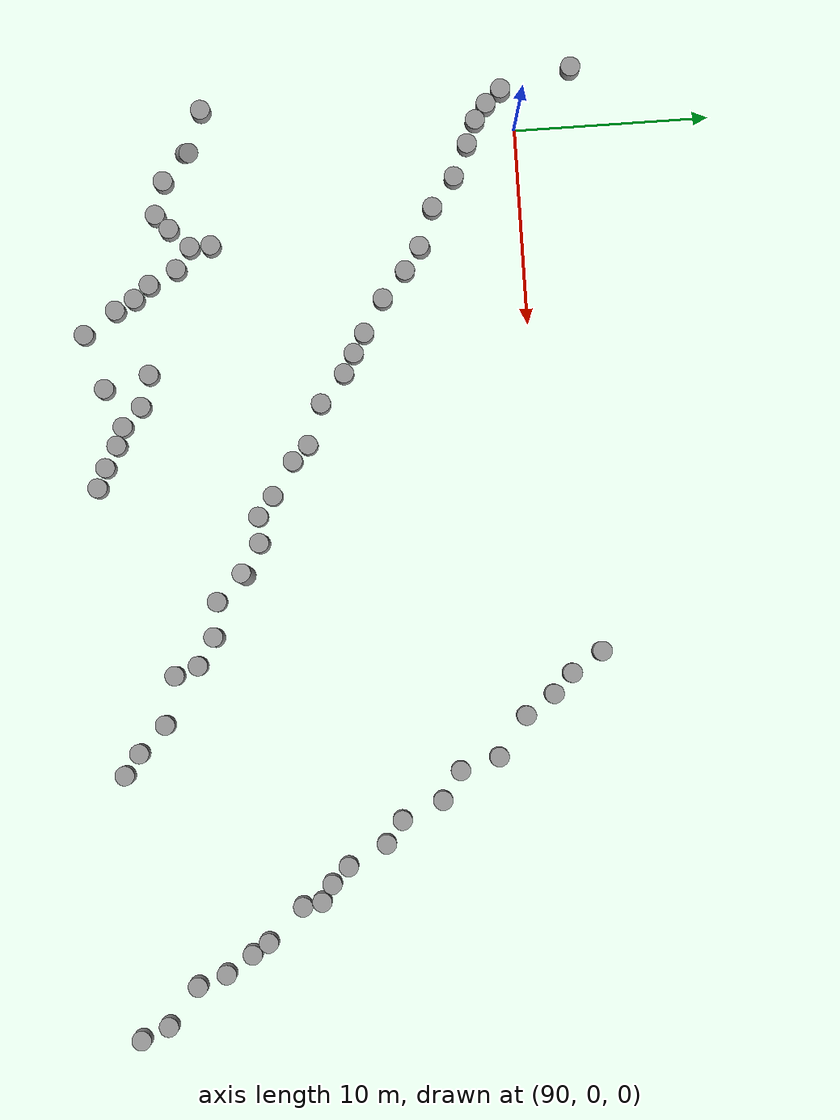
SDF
<sdf version="1.7">
 <world name="default">
  <model name="unit_cylinder_85_clone_244_clone_496">
   <pose>87.9997 -16.0004 0.45126 0.000705 -0.000419 0.000206</pose>
   <link name="link">
    <inertial>
     <mass>1</mass>
     <inertia><ixx>0.145833</ixx><ixy>0</ixy><ixz>0</ixz><iyy>0.145833</iyy><iyz>0</iyz><izz>0.125</izz></inertia>
    </inertial>
    <collision name="collision">
     <geometry><cylinder><radius>0.5</radius><length>1</length></cylinder></geometry>
    </collision>
    <visual name="visual">
     <geometry><cylinder><radius>0.5</radius><length>1</length></cylinder></geometry>
     <material>
      <script><name>Gazebo/Grey</name><uri>file://media/materials/scripts/gazebo.material</uri></script>
     </material>
    </visual>
   </link>
  </model>
  <model name="unit_cylinder_85_clone_244_clone_497">
   <pose>90.0818 -16.8705 0.381583 -0.273151 0.166873 -0.022851</pose>
   <link name="link">
    <inertial>
     <mass>1</mass>
     <inertia><ixx>0.145833</ixx><ixy>0</ixy><ixz>0</ixz><iyy>0.145833</iyy><iyz>0</iyz><izz>0.125</izz></inertia>
    </inertial>
    <collision name="collision">
     <geometry><cylinder><radius>0.5</radius><length>1</length></cylinder></geometry>
    </collision>
    <visual name="visual">
     <geometry><cylinder><radius>0.5</radius><length>1</length></cylinder></geometry>
     <material>
      <script><name>Gazebo/Grey</name><uri>file://media/materials/scripts/gazebo.material</uri></script>
     </material>
    </visual>
   </link>
  </model>
  <model name="unit_cylinder_85_clone_244_clone_498">
   <pose>91.5366 -18.141 0.451294 0.000905 -0.000593 9.5e-05</pose>
   <link name="link">
    <inertial>
     <mass>1</mass>
     <inertia><ixx>0.145833</ixx><ixy>0</ixy><ixz>0</ixz><iyy>0.145833</iyy><iyz>0</iyz><izz>0.125</izz></inertia>
    </inertial>
    <collision name="collision">
     <geometry><cylinder><radius>0.5</radius><length>1</length></cylinder></geometry>
    </collision>
    <visual name="visual">
     <geometry><cylinder><radius>0.5</radius><length>1</length></cylinder></geometry>
     <material>
      <script><name>Gazebo/Grey</name><uri>file://media/materials/scripts/gazebo.material</uri></script>
     </material>
    </visual>
   </link>
  </model>
  <model name="unit_cylinder_85_clone_244_clone_499">
   <pose>93.2406 -18.651 0.451046 0.000457 0.000232 -0.004502</pose>
   <link name="link">
    <inertial>
     <mass>1</mass>
     <inertia><ixx>0.145833</ixx><ixy>0</ixy><ixz>0</ixz><iyy>0.145833</iyy><iyz>0</iyz><izz>0.125</izz></inertia>
    </inertial>
    <collision name="collision">
     <geometry><cylinder><radius>0.5</radius><length>1</length></cylinder></geometry>
    </collision>
    <visual name="visual">
     <geometry><cylinder><radius>0.5</radius><length>1</length></cylinder></geometry>
     <material>
      <script><name>Gazebo/Grey</name><uri>file://media/materials/scripts/gazebo.material</uri></script>
     </material>
    </visual>
   </link>
  </model>
  <model name="unit_cylinder_85_clone_244_clone_500">
   <pose>95 -17 0.451116 6.6e-05 -0.000126 0.000592</pose>
   <link name="link">
    <inertial>
     <mass>1</mass>
     <inertia><ixx>0.145833</ixx><ixy>0</ixy><ixz>0</ixz><iyy>0.145833</iyy><iyz>0</iyz><izz>0.125</izz></inertia>
    </inertial>
    <collision name="collision">
     <geometry><cylinder><radius>0.5</radius><length>1</length></cylinder></geometry>
    </collision>
    <visual name="visual">
     <geometry><cylinder><radius>0.5</radius><length>1</length></cylinder></geometry>
     <material>
      <script><name>Gazebo/Grey</name><uri>file://media/materials/scripts/gazebo.material</uri></script>
     </material>
    </visual>
   </link>
  </model>
  <model name="unit_cylinder_85_clone_244_clone_501">
   <pose>94.9868 -15.9228 0.451241 0.000135 -4e-05 -0.000185</pose>
   <link name="link">
    <inertial>
     <mass>1</mass>
     <inertia><ixx>0.145833</ixx><ixy>0</ixy><ixz>0</ixz><iyy>0.145833</iyy><iyz>0</iyz><izz>0.125</izz></inertia>
    </inertial>
    <collision name="collision">
     <geometry><cylinder><radius>0.5</radius><length>1</length></cylinder></geometry>
    </collision>
    <visual name="visual">
     <geometry><cylinder><radius>0.5</radius><length>1</length></cylinder></geometry>
     <material>
      <script><name>Gazebo/Grey</name><uri>file://media/materials/scripts/gazebo.material</uri></script>
     </material>
    </visual>
   </link>
  </model>
  <model name="unit_cylinder_85_clone_244_clone_502">
   <pose>94.001 -18.0015 0.450919 5.4e-05 -0.000116 0.009453</pose>
   <link name="link">
    <inertial>
     <mass>1</mass>
     <inertia><ixx>0.145833</ixx><ixy>0</ixy><ixz>0</ixz><iyy>0.145833</iyy><iyz>0</iyz><izz>0.125</izz></inertia>
    </inertial>
    <collision name="collision">
     <geometry><cylinder><radius>0.5</radius><length>1</length></cylinder></geometry>
    </collision>
    <visual name="visual">
     <geometry><cylinder><radius>0.5</radius><length>1</length></cylinder></geometry>
     <material>
      <script><name>Gazebo/Grey</name><uri>file://media/materials/scripts/gazebo.material</uri></script>
     </material>
    </visual>
   </link>
  </model>
  <model name="unit_cylinder_85_clone_244_clone_503">
   <pose>96.0932 -17.7556 0.451203 5.9e-05 -0.000125 0.00056</pose>
   <link name="link">
    <inertial>
     <mass>1</mass>
     <inertia><ixx>0.145833</ixx><ixy>0</ixy><ixz>0</ixz><iyy>0.145833</iyy><iyz>0</iyz><izz>0.125</izz></inertia>
    </inertial>
    <collision name="collision">
     <geometry><cylinder><radius>0.5</radius><length>1</length></cylinder></geometry>
    </collision>
    <visual name="visual">
     <geometry><cylinder><radius>0.5</radius><length>1</length></cylinder></geometry>
     <material>
      <script><name>Gazebo/Grey</name><uri>file://media/materials/scripts/gazebo.material</uri></script>
     </material>
    </visual>
   </link>
  </model>
  <model name="unit_cylinder_85_clone_244_clone_504">
   <pose>97.4692 -20.0002 0.450955 0.000329 -0.000123 0.000462</pose>
   <link name="link">
    <inertial>
     <mass>1</mass>
     <inertia><ixx>0.145833</ixx><ixy>0</ixy><ixz>0</ixz><iyy>0.145833</iyy><iyz>0</iyz><izz>0.125</izz></inertia>
    </inertial>
    <collision name="collision">
     <geometry><cylinder><radius>0.5</radius><length>1</length></cylinder></geometry>
    </collision>
    <visual name="visual">
     <geometry><cylinder><radius>0.5</radius><length>1</length></cylinder></geometry>
     <material>
      <script><name>Gazebo/Grey</name><uri>file://media/materials/scripts/gazebo.material</uri></script>
     </material>
    </visual>
   </link>
  </model>
  <model name="unit_cylinder_85_clone_244_clone_505">
   <pose>97.9997 -20.9999 0.450947 0.000388 -0.000639 -0.002426</pose>
   <link name="link">
    <inertial>
     <mass>1</mass>
     <inertia><ixx>0.145833</ixx><ixy>0</ixy><ixz>0</ixz><iyy>0.145833</iyy><iyz>0</iyz><izz>0.125</izz></inertia>
    </inertial>
    <collision name="collision">
     <geometry><cylinder><radius>0.5</radius><length>1</length></cylinder></geometry>
    </collision>
    <visual name="visual">
     <geometry><cylinder><radius>0.5</radius><length>1</length></cylinder></geometry>
     <material>
      <script><name>Gazebo/Grey</name><uri>file://media/materials/scripts/gazebo.material</uri></script>
     </material>
    </visual>
   </link>
  </model>
  <model name="unit_cylinder_85_clone_244_clone_506">
   <pose>102 -9.56101 0.451263 -2.5e-05 9e-06 0.001444</pose>
   <link name="link">
    <inertial>
     <mass>1</mass>
     <inertia><ixx>0.145833</ixx><ixy>0</ixy><ixz>0</ixz><iyy>0.145833</iyy><iyz>0</iyz><izz>0.125</izz></inertia>
    </inertial>
    <collision name="collision">
     <geometry><cylinder><radius>0.5</radius><length>1</length></cylinder></geometry>
    </collision>
    <visual name="visual">
     <geometry><cylinder><radius>0.5</radius><length>1</length></cylinder></geometry>
     <material>
      <script><name>Gazebo/Grey</name><uri>file://media/materials/scripts/gazebo.material</uri></script>
     </material>
    </visual>
   </link>
  </model>
  <model name="unit_cylinder_85_clone_244_clone_507">
   <pose>100 -8.40151 0.451281 -4.2e-05 -1.6e-05 0.000712</pose>
   <link name="link">
    <inertial>
     <mass>1</mass>
     <inertia><ixx>0.145833</ixx><ixy>0</ixy><ixz>0</ixz><iyy>0.145833</iyy><iyz>0</iyz><izz>0.125</izz></inertia>
    </inertial>
    <collision name="collision">
     <geometry><cylinder><radius>0.5</radius><length>1</length></cylinder></geometry>
    </collision>
    <visual name="visual">
     <geometry><cylinder><radius>0.5</radius><length>1</length></cylinder></geometry>
     <material>
      <script><name>Gazebo/Grey</name><uri>file://media/materials/scripts/gazebo.material</uri></script>
     </material>
    </visual>
   </link>
  </model>
  <model name="unit_cylinder_85_clone_244_clone_508">
   <pose>101 -9.0001 0.45127 -1.3e-05 8e-06 0.001001</pose>
   <link name="link">
    <inertial>
     <mass>1</mass>
     <inertia><ixx>0.145833</ixx><ixy>0</ixy><ixz>0</ixz><iyy>0.145833</iyy><iyz>0</iyz><izz>0.125</izz></inertia>
    </inertial>
    <collision name="collision">
     <geometry><cylinder><radius>0.5</radius><length>1</length></cylinder></geometry>
    </collision>
    <visual name="visual">
     <geometry><cylinder><radius>0.5</radius><length>1</length></cylinder></geometry>
     <material>
      <script><name>Gazebo/Grey</name><uri>file://media/materials/scripts/gazebo.material</uri></script>
     </material>
    </visual>
   </link>
  </model>
  <model name="unit_cylinder_85_clone_244_clone_509">
   <pose>98.3056 -7.32946 0.451266 -3e-05 1.8e-05 0.000491</pose>
   <link name="link">
    <inertial>
     <mass>1</mass>
     <inertia><ixx>0.145833</ixx><ixy>0</ixy><ixz>0</ixz><iyy>0.145833</iyy><iyz>0</iyz><izz>0.125</izz></inertia>
    </inertial>
    <collision name="collision">
     <geometry><cylinder><radius>0.5</radius><length>1</length></cylinder></geometry>
    </collision>
    <visual name="visual">
     <geometry><cylinder><radius>0.5</radius><length>1</length></cylinder></geometry>
     <material>
      <script><name>Gazebo/Grey</name><uri>file://media/materials/scripts/gazebo.material</uri></script>
     </material>
    </visual>
   </link>
  </model>
  <model name="unit_cylinder_85_clone_244_clone_510">
   <pose>96.9482 -6.10022 0.451249 -1.2e-05 6e-06 0.027291</pose>
   <link name="link">
    <inertial>
     <mass>1</mass>
     <inertia><ixx>0.145833</ixx><ixy>0</ixy><ixz>0</ixz><iyy>0.145833</iyy><iyz>0</iyz><izz>0.125</izz></inertia>
    </inertial>
    <collision name="collision">
     <geometry><cylinder><radius>0.5</radius><length>1</length></cylinder></geometry>
    </collision>
    <visual name="visual">
     <geometry><cylinder><radius>0.5</radius><length>1</length></cylinder></geometry>
     <material>
      <script><name>Gazebo/Grey</name><uri>file://media/materials/scripts/gazebo.material</uri></script>
     </material>
    </visual>
   </link>
  </model>
  <model name="unit_cylinder_85_clone_244_clone_511">
   <pose>95.7731 -5.24636 0.496243 0.086571 -0.038177 -0.045462</pose>
   <link name="link">
    <inertial>
     <mass>1</mass>
     <inertia><ixx>0.145833</ixx><ixy>0</ixy><ixz>0</ixz><iyy>0.145833</iyy><iyz>0</iyz><izz>0.125</izz></inertia>
    </inertial>
    <collision name="collision">
     <geometry><cylinder><radius>0.5</radius><length>1</length></cylinder></geometry>
    </collision>
    <visual name="visual">
     <geometry><cylinder><radius>0.5</radius><length>1</length></cylinder></geometry>
     <material>
      <script><name>Gazebo/Grey</name><uri>file://media/materials/scripts/gazebo.material</uri></script>
     </material>
    </visual>
   </link>
  </model>
  <model name="unit_cylinder_85_clone_244_clone_512">
   <pose>93.7989 -4.4817 0.451257 -3.4e-05 2.1e-05 -0.001937</pose>
   <link name="link">
    <inertial>
     <mass>1</mass>
     <inertia><ixx>0.145833</ixx><ixy>0</ixy><ixz>0</ixz><iyy>0.145833</iyy><iyz>0</iyz><izz>0.125</izz></inertia>
    </inertial>
    <collision name="collision">
     <geometry><cylinder><radius>0.5</radius><length>1</length></cylinder></geometry>
    </collision>
    <visual name="visual">
     <geometry><cylinder><radius>0.5</radius><length>1</length></cylinder></geometry>
     <material>
      <script><name>Gazebo/Grey</name><uri>file://media/materials/scripts/gazebo.material</uri></script>
     </material>
    </visual>
   </link>
  </model>
  <model name="unit_cylinder_85_clone_244_clone_513">
   <pose>92.2988 -3.28061 0.451257 -2.9e-05 1.7e-05 0.000654</pose>
   <link name="link">
    <inertial>
     <mass>1</mass>
     <inertia><ixx>0.145833</ixx><ixy>0</ixy><ixz>0</ixz><iyy>0.145833</iyy><iyz>0</iyz><izz>0.125</izz></inertia>
    </inertial>
    <collision name="collision">
     <geometry><cylinder><radius>0.5</radius><length>1</length></cylinder></geometry>
    </collision>
    <visual name="visual">
     <geometry><cylinder><radius>0.5</radius><length>1</length></cylinder></geometry>
     <material>
      <script><name>Gazebo/Grey</name><uri>file://media/materials/scripts/gazebo.material</uri></script>
     </material>
    </visual>
   </link>
  </model>
  <model name="unit_cylinder_85_clone_244_clone_514">
   <pose>90.6534 -2.49589 0.451262 -2.3e-05 3.7e-05 -0.002101</pose>
   <link name="link">
    <inertial>
     <mass>1</mass>
     <inertia><ixx>0.145833</ixx><ixy>0</ixy><ixz>0</ixz><iyy>0.145833</iyy><iyz>0</iyz><izz>0.125</izz></inertia>
    </inertial>
    <collision name="collision">
     <geometry><cylinder><radius>0.5</radius><length>1</length></cylinder></geometry>
    </collision>
    <visual name="visual">
     <geometry><cylinder><radius>0.5</radius><length>1</length></cylinder></geometry>
     <material>
      <script><name>Gazebo/Grey</name><uri>file://media/materials/scripts/gazebo.material</uri></script>
     </material>
    </visual>
   </link>
  </model>
  <model name="unit_cylinder_85_clone_244_clone_515">
   <pose>89.4511 -1.99994 0.451263 -5.1e-05 1.7e-05 0.000303</pose>
   <link name="link">
    <inertial>
     <mass>1</mass>
     <inertia><ixx>0.145833</ixx><ixy>0</ixy><ixz>0</ixz><iyy>0.145833</iyy><iyz>0</iyz><izz>0.125</izz></inertia>
    </inertial>
    <collision name="collision">
     <geometry><cylinder><radius>0.5</radius><length>1</length></cylinder></geometry>
    </collision>
    <visual name="visual">
     <geometry><cylinder><radius>0.5</radius><length>1</length></cylinder></geometry>
     <material>
      <script><name>Gazebo/Grey</name><uri>file://media/materials/scripts/gazebo.material</uri></script>
     </material>
    </visual>
   </link>
  </model>
  <model name="unit_cylinder_85_clone_244_clone_516">
   <pose>87.9594 -0.577654 0.475161 0.041391 -0.026302 0.039431</pose>
   <link name="link">
    <inertial>
     <mass>1</mass>
     <inertia><ixx>0.145833</ixx><ixy>0</ixy><ixz>0</ixz><iyy>0.145833</iyy><iyz>0</iyz><izz>0.125</izz></inertia>
    </inertial>
    <collision name="collision">
     <geometry><cylinder><radius>0.5</radius><length>1</length></cylinder></geometry>
    </collision>
    <visual name="visual">
     <geometry><cylinder><radius>0.5</radius><length>1</length></cylinder></geometry>
     <material>
      <script><name>Gazebo/Grey</name><uri>file://media/materials/scripts/gazebo.material</uri></script>
     </material>
    </visual>
   </link>
  </model>
  <model name="unit_cylinder_85_clone_244_clone_517">
   <pose>88.6522 -1.39051 0.451256 -4.2e-05 2.6e-05 0.000259</pose>
   <link name="link">
    <inertial>
     <mass>1</mass>
     <inertia><ixx>0.145833</ixx><ixy>0</ixy><ixz>0</ixz><iyy>0.145833</iyy><iyz>0</iyz><izz>0.125</izz></inertia>
    </inertial>
    <collision name="collision">
     <geometry><cylinder><radius>0.5</radius><length>1</length></cylinder></geometry>
    </collision>
    <visual name="visual">
     <geometry><cylinder><radius>0.5</radius><length>1</length></cylinder></geometry>
     <material>
      <script><name>Gazebo/Grey</name><uri>file://media/materials/scripts/gazebo.material</uri></script>
     </material>
    </visual>
   </link>
  </model>
  <model name="unit_cylinder_85_clone_244_clone_521">
   <pose>87.0585 3.06431 0.451234 1e-06 -1e-06 -0.018414</pose>
   <link name="link">
    <inertial>
     <mass>1</mass>
     <inertia><ixx>0.145833</ixx><ixy>0</ixy><ixz>0</ixz><iyy>0.145833</iyy><iyz>0</iyz><izz>0.125</izz></inertia>
    </inertial>
    <collision name="collision">
     <geometry><cylinder><radius>0.5</radius><length>1</length></cylinder></geometry>
    </collision>
    <visual name="visual">
     <geometry><cylinder><radius>0.5</radius><length>1</length></cylinder></geometry>
     <material>
      <script><name>Gazebo/Grey</name><uri>file://media/materials/scripts/gazebo.material</uri></script>
     </material>
    </visual>
   </link>
  </model>
  <model name="unit_cylinder_85_clone_244_clone_553">
   <pose>117 2.58261 0.451266 4e-06 -1.2e-05 0.000466</pose>
   <link name="link">
    <inertial>
     <mass>1</mass>
     <inertia><ixx>0.145833</ixx><ixy>0</ixy><ixz>0</ixz><iyy>0.145833</iyy><iyz>0</iyz><izz>0.125</izz></inertia>
    </inertial>
    <collision name="collision">
     <geometry><cylinder><radius>0.5</radius><length>1</length></cylinder></geometry>
    </collision>
    <visual name="visual">
     <geometry><cylinder><radius>0.5</radius><length>1</length></cylinder></geometry>
     <material>
      <script><name>Gazebo/Grey</name><uri>file://media/materials/scripts/gazebo.material</uri></script>
     </material>
    </visual>
   </link>
  </model>
  <model name="unit_cylinder_85_clone_244_clone_554">
   <pose>118 1.00005 0.451277 6e-06 -9e-06 0.00048</pose>
   <link name="link">
    <inertial>
     <mass>1</mass>
     <inertia><ixx>0.145833</ixx><ixy>0</ixy><ixz>0</ixz><iyy>0.145833</iyy><iyz>0</iyz><izz>0.125</izz></inertia>
    </inertial>
    <collision name="collision">
     <geometry><cylinder><radius>0.5</radius><length>1</length></cylinder></geometry>
    </collision>
    <visual name="visual">
     <geometry><cylinder><radius>0.5</radius><length>1</length></cylinder></geometry>
     <material>
      <script><name>Gazebo/Grey</name><uri>file://media/materials/scripts/gazebo.material</uri></script>
     </material>
    </visual>
   </link>
  </model>
  <model name="unit_cylinder_85_clone_244_clone_555">
   <pose>119 7.1e-05 0.451279 6e-06 -9e-06 0.000566</pose>
   <link name="link">
    <inertial>
     <mass>1</mass>
     <inertia><ixx>0.145833</ixx><ixy>0</ixy><ixz>0</ixz><iyy>0.145833</iyy><iyz>0</iyz><izz>0.125</izz></inertia>
    </inertial>
    <collision name="collision">
     <geometry><cylinder><radius>0.5</radius><length>1</length></cylinder></geometry>
    </collision>
    <visual name="visual">
     <geometry><cylinder><radius>0.5</radius><length>1</length></cylinder></geometry>
     <material>
      <script><name>Gazebo/Grey</name><uri>file://media/materials/scripts/gazebo.material</uri></script>
     </material>
    </visual>
   </link>
  </model>
  <model name="unit_cylinder_85_clone_244_clone_556">
   <pose>120 -1.48075 0.451269 6e-06 -9e-06 0.000505</pose>
   <link name="link">
    <inertial>
     <mass>1</mass>
     <inertia><ixx>0.145833</ixx><ixy>0</ixy><ixz>0</ixz><iyy>0.145833</iyy><iyz>0</iyz><izz>0.125</izz></inertia>
    </inertial>
    <collision name="collision">
     <geometry><cylinder><radius>0.5</radius><length>1</length></cylinder></geometry>
    </collision>
    <visual name="visual">
     <geometry><cylinder><radius>0.5</radius><length>1</length></cylinder></geometry>
     <material>
      <script><name>Gazebo/Grey</name><uri>file://media/materials/scripts/gazebo.material</uri></script>
     </material>
    </visual>
   </link>
  </model>
  <model name="unit_cylinder_85_clone_244_clone_557">
   <pose>122 -2.99994 0.451268 -3.8e-05 5.4e-05 0.000519</pose>
   <link name="link">
    <inertial>
     <mass>1</mass>
     <inertia><ixx>0.145833</ixx><ixy>0</ixy><ixz>0</ixz><iyy>0.145833</iyy><iyz>0</iyz><izz>0.125</izz></inertia>
    </inertial>
    <collision name="collision">
     <geometry><cylinder><radius>0.5</radius><length>1</length></cylinder></geometry>
    </collision>
    <visual name="visual">
     <geometry><cylinder><radius>0.5</radius><length>1</length></cylinder></geometry>
     <material>
      <script><name>Gazebo/Grey</name><uri>file://media/materials/scripts/gazebo.material</uri></script>
     </material>
    </visual>
   </link>
  </model>
  <model name="unit_cylinder_85_clone_244_clone_558">
   <pose>122.563 -5 0.451274 7e-06 -1e-05 0.000467</pose>
   <link name="link">
    <inertial>
     <mass>1</mass>
     <inertia><ixx>0.145833</ixx><ixy>0</ixy><ixz>0</ixz><iyy>0.145833</iyy><iyz>0</iyz><izz>0.125</izz></inertia>
    </inertial>
    <collision name="collision">
     <geometry><cylinder><radius>0.5</radius><length>1</length></cylinder></geometry>
    </collision>
    <visual name="visual">
     <geometry><cylinder><radius>0.5</radius><length>1</length></cylinder></geometry>
     <material>
      <script><name>Gazebo/Grey</name><uri>file://media/materials/scripts/gazebo.material</uri></script>
     </material>
    </visual>
   </link>
  </model>
  <model name="unit_cylinder_85_clone_244_clone_559">
   <pose>124 -6 0.451286 3e-06 -4e-06 0.000466</pose>
   <link name="link">
    <inertial>
     <mass>1</mass>
     <inertia><ixx>0.145833</ixx><ixy>0</ixy><ixz>0</ixz><iyy>0.145833</iyy><iyz>0</iyz><izz>0.125</izz></inertia>
    </inertial>
    <collision name="collision">
     <geometry><cylinder><radius>0.5</radius><length>1</length></cylinder></geometry>
    </collision>
    <visual name="visual">
     <geometry><cylinder><radius>0.5</radius><length>1</length></cylinder></geometry>
     <material>
      <script><name>Gazebo/Grey</name><uri>file://media/materials/scripts/gazebo.material</uri></script>
     </material>
    </visual>
   </link>
  </model>
  <model name="unit_cylinder_85_clone_244_clone_560">
   <pose>124.855 -8.12133 0.45128 1e-05 -1.3e-05 0.000463</pose>
   <link name="link">
    <inertial>
     <mass>1</mass>
     <inertia><ixx>0.145833</ixx><ixy>0</ixy><ixz>0</ixz><iyy>0.145833</iyy><iyz>0</iyz><izz>0.125</izz></inertia>
    </inertial>
    <collision name="collision">
     <geometry><cylinder><radius>0.5</radius><length>1</length></cylinder></geometry>
    </collision>
    <visual name="visual">
     <geometry><cylinder><radius>0.5</radius><length>1</length></cylinder></geometry>
     <material>
      <script><name>Gazebo/Grey</name><uri>file://media/materials/scripts/gazebo.material</uri></script>
     </material>
    </visual>
   </link>
  </model>
  <model name="unit_cylinder_85_clone_244_clone_561">
   <pose>126 -9 0.451283 4e-06 -5e-06 0.000466</pose>
   <link name="link">
    <inertial>
     <mass>1</mass>
     <inertia><ixx>0.145833</ixx><ixy>0</ixy><ixz>0</ixz><iyy>0.145833</iyy><iyz>0</iyz><izz>0.125</izz></inertia>
    </inertial>
    <collision name="collision">
     <geometry><cylinder><radius>0.5</radius><length>1</length></cylinder></geometry>
    </collision>
    <visual name="visual">
     <geometry><cylinder><radius>0.5</radius><length>1</length></cylinder></geometry>
     <material>
      <script><name>Gazebo/Grey</name><uri>file://media/materials/scripts/gazebo.material</uri></script>
     </material>
    </visual>
   </link>
  </model>
  <model name="unit_cylinder_85_clone_244_clone_562">
   <pose>127 -11 0.451282 8e-06 -1.2e-05 0.000466</pose>
   <link name="link">
    <inertial>
     <mass>1</mass>
     <inertia><ixx>0.145833</ixx><ixy>0</ixy><ixz>0</ixz><iyy>0.145833</iyy><iyz>0</iyz><izz>0.125</izz></inertia>
    </inertial>
    <collision name="collision">
     <geometry><cylinder><radius>0.5</radius><length>1</length></cylinder></geometry>
    </collision>
    <visual name="visual">
     <geometry><cylinder><radius>0.5</radius><length>1</length></cylinder></geometry>
     <material>
      <script><name>Gazebo/Grey</name><uri>file://media/materials/scripts/gazebo.material</uri></script>
     </material>
    </visual>
   </link>
  </model>
  <model name="unit_cylinder_85_clone_244_clone_563">
   <pose>128.862 -13.4403 0.451293 1.7e-05 -2.3e-05 -0.052074</pose>
   <link name="link">
    <inertial>
     <mass>1</mass>
     <inertia><ixx>0.145833</ixx><ixy>0</ixy><ixz>0</ixz><iyy>0.145833</iyy><iyz>0</iyz><izz>0.125</izz></inertia>
    </inertial>
    <collision name="collision">
     <geometry><cylinder><radius>0.5</radius><length>1</length></cylinder></geometry>
    </collision>
    <visual name="visual">
     <geometry><cylinder><radius>0.5</radius><length>1</length></cylinder></geometry>
     <material>
      <script><name>Gazebo/Grey</name><uri>file://media/materials/scripts/gazebo.material</uri></script>
     </material>
    </visual>
   </link>
  </model>
  <model name="unit_cylinder_85_clone_244_clone_564">
   <pose>131.094 -16.1343 0.451287 1.1e-05 -1.4e-05 -0.016134</pose>
   <link name="link">
    <inertial>
     <mass>1</mass>
     <inertia><ixx>0.145833</ixx><ixy>0</ixy><ixz>0</ixz><iyy>0.145833</iyy><iyz>0</iyz><izz>0.125</izz></inertia>
    </inertial>
    <collision name="collision">
     <geometry><cylinder><radius>0.5</radius><length>1</length></cylinder></geometry>
    </collision>
    <visual name="visual">
     <geometry><cylinder><radius>0.5</radius><length>1</length></cylinder></geometry>
     <material>
      <script><name>Gazebo/Grey</name><uri>file://media/materials/scripts/gazebo.material</uri></script>
     </material>
    </visual>
   </link>
  </model>
  <model name="unit_cylinder_85_clone_244_clone_565">
   <pose>130.561 -15.2879 0.451287 1e-05 -1.4e-05 0.027012</pose>
   <link name="link">
    <inertial>
     <mass>1</mass>
     <inertia><ixx>0.145833</ixx><ixy>0</ixy><ixz>0</ixz><iyy>0.145833</iyy><iyz>0</iyz><izz>0.125</izz></inertia>
    </inertial>
    <collision name="collision">
     <geometry><cylinder><radius>0.5</radius><length>1</length></cylinder></geometry>
    </collision>
    <visual name="visual">
     <geometry><cylinder><radius>0.5</radius><length>1</length></cylinder></geometry>
     <material>
      <script><name>Gazebo/Grey</name><uri>file://media/materials/scripts/gazebo.material</uri></script>
     </material>
    </visual>
   </link>
  </model>
  <model name="unit_cylinder_85_clone_244_clone_566">
   <pose>128.688 -12.4555 0.451294 1e-06 1e-06 0.050613</pose>
   <link name="link">
    <inertial>
     <mass>1</mass>
     <inertia><ixx>0.145833</ixx><ixy>0</ixy><ixz>0</ixz><iyy>0.145833</iyy><iyz>0</iyz><izz>0.125</izz></inertia>
    </inertial>
    <collision name="collision">
     <geometry><cylinder><radius>0.5</radius><length>1</length></cylinder></geometry>
    </collision>
    <visual name="visual">
     <geometry><cylinder><radius>0.5</radius><length>1</length></cylinder></geometry>
     <material>
      <script><name>Gazebo/Grey</name><uri>file://media/materials/scripts/gazebo.material</uri></script>
     </material>
    </visual>
   </link>
  </model>
  <model name="unit_cylinder_85_clone_244_clone_567">
   <pose>127.835 -11.8874 0.451286 8e-06 -1.1e-05 -0.004071</pose>
   <link name="link">
    <inertial>
     <mass>1</mass>
     <inertia><ixx>0.145833</ixx><ixy>0</ixy><ixz>0</ixz><iyy>0.145833</iyy><iyz>0</iyz><izz>0.125</izz></inertia>
    </inertial>
    <collision name="collision">
     <geometry><cylinder><radius>0.5</radius><length>1</length></cylinder></geometry>
    </collision>
    <visual name="visual">
     <geometry><cylinder><radius>0.5</radius><length>1</length></cylinder></geometry>
     <material>
      <script><name>Gazebo/Grey</name><uri>file://media/materials/scripts/gazebo.material</uri></script>
     </material>
    </visual>
   </link>
  </model>
  <model name="unit_cylinder_85_clone_244_clone_568">
   <pose>132 -17.5091 0.451287 -1.6e-05 1.5e-05 0.000471</pose>
   <link name="link">
    <inertial>
     <mass>1</mass>
     <inertia><ixx>0.145833</ixx><ixy>0</ixy><ixz>0</ixz><iyy>0.145833</iyy><iyz>0</iyz><izz>0.125</izz></inertia>
    </inertial>
    <collision name="collision">
     <geometry><cylinder><radius>0.5</radius><length>1</length></cylinder></geometry>
    </collision>
    <visual name="visual">
     <geometry><cylinder><radius>0.5</radius><length>1</length></cylinder></geometry>
     <material>
      <script><name>Gazebo/Grey</name><uri>file://media/materials/scripts/gazebo.material</uri></script>
     </material>
    </visual>
   </link>
  </model>
  <model name="unit_cylinder_85_clone_244_clone_569">
   <pose>132.516 -18.9999 0.451272 1.8e-05 -3e-05 0.000526</pose>
   <link name="link">
    <inertial>
     <mass>1</mass>
     <inertia><ixx>0.145833</ixx><ixy>0</ixy><ixz>0</ixz><iyy>0.145833</iyy><iyz>0</iyz><izz>0.125</izz></inertia>
    </inertial>
    <collision name="collision">
     <geometry><cylinder><radius>0.5</radius><length>1</length></cylinder></geometry>
    </collision>
    <visual name="visual">
     <geometry><cylinder><radius>0.5</radius><length>1</length></cylinder></geometry>
     <material>
      <script><name>Gazebo/Grey</name><uri>file://media/materials/scripts/gazebo.material</uri></script>
     </material>
    </visual>
   </link>
  </model>
  <model name="unit_cylinder_85_clone_244_clone_570">
   <pose>134.414 -20.5888 0.451287 1.8e-05 -2.2e-05 0.00047</pose>
   <link name="link">
    <inertial>
     <mass>1</mass>
     <inertia><ixx>0.145833</ixx><ixy>0</ixy><ixz>0</ixz><iyy>0.145833</iyy><iyz>0</iyz><izz>0.125</izz></inertia>
    </inertial>
    <collision name="collision">
     <geometry><cylinder><radius>0.5</radius><length>1</length></cylinder></geometry>
    </collision>
    <visual name="visual">
     <geometry><cylinder><radius>0.5</radius><length>1</length></cylinder></geometry>
     <material>
      <script><name>Gazebo/Grey</name><uri>file://media/materials/scripts/gazebo.material</uri></script>
     </material>
    </visual>
   </link>
  </model>
  <model name="unit_cylinder_85_clone_244_clone_571">
   <pose>135 -22 0.45127 1.9e-05 -2.5e-05 0.00047</pose>
   <link name="link">
    <inertial>
     <mass>1</mass>
     <inertia><ixx>0.145833</ixx><ixy>0</ixy><ixz>0</ixz><iyy>0.145833</iyy><iyz>0</iyz><izz>0.125</izz></inertia>
    </inertial>
    <collision name="collision">
     <geometry><cylinder><radius>0.5</radius><length>1</length></cylinder></geometry>
    </collision>
    <visual name="visual">
     <geometry><cylinder><radius>0.5</radius><length>1</length></cylinder></geometry>
     <material>
      <script><name>Gazebo/Grey</name><uri>file://media/materials/scripts/gazebo.material</uri></script>
     </material>
    </visual>
   </link>
  </model>
  <model name="unit_cylinder_85_clone_244_clone_584">
   <pose>103.456 -10.8356 0.4513 -4e-06 4e-05 0.000478</pose>
   <link name="link">
    <inertial>
     <mass>1</mass>
     <inertia><ixx>0.145833</ixx><ixy>0</ixy><ixz>0</ixz><iyy>0.145833</iyy><iyz>0</iyz><izz>0.125</izz></inertia>
    </inertial>
    <collision name="collision">
     <geometry><cylinder><radius>0.5</radius><length>1</length></cylinder></geometry>
    </collision>
    <visual name="visual">
     <geometry><cylinder><radius>0.5</radius><length>1</length></cylinder></geometry>
     <material>
      <script><name>Gazebo/Grey</name><uri>file://media/materials/scripts/gazebo.material</uri></script>
     </material>
    </visual>
   </link>
  </model>
  <model name="unit_cylinder_85_clone_244_clone_585">
   <pose>105.52 -11.6315 0.451264 -1.3e-05 7e-06 0.001021</pose>
   <link name="link">
    <inertial>
     <mass>1</mass>
     <inertia><ixx>0.145833</ixx><ixy>0</ixy><ixz>0</ixz><iyy>0.145833</iyy><iyz>0</iyz><izz>0.125</izz></inertia>
    </inertial>
    <collision name="collision">
     <geometry><cylinder><radius>0.5</radius><length>1</length></cylinder></geometry>
    </collision>
    <visual name="visual">
     <geometry><cylinder><radius>0.5</radius><length>1</length></cylinder></geometry>
     <material>
      <script><name>Gazebo/Grey</name><uri>file://media/materials/scripts/gazebo.material</uri></script>
     </material>
    </visual>
   </link>
  </model>
  <model name="unit_cylinder_85_clone_244_clone_586">
   <pose>108 -13.5926 0.451271 -2.2e-05 1.4e-05 0.000699</pose>
   <link name="link">
    <inertial>
     <mass>1</mass>
     <inertia><ixx>0.145833</ixx><ixy>0</ixy><ixz>0</ixz><iyy>0.145833</iyy><iyz>0</iyz><izz>0.125</izz></inertia>
    </inertial>
    <collision name="collision">
     <geometry><cylinder><radius>0.5</radius><length>1</length></cylinder></geometry>
    </collision>
    <visual name="visual">
     <geometry><cylinder><radius>0.5</radius><length>1</length></cylinder></geometry>
     <material>
      <script><name>Gazebo/Grey</name><uri>file://media/materials/scripts/gazebo.material</uri></script>
     </material>
    </visual>
   </link>
  </model>
  <model name="unit_cylinder_85_clone_244_clone_587">
   <pose>109 -14.4002 0.451287 1.5e-05 -3e-06 0.000465</pose>
   <link name="link">
    <inertial>
     <mass>1</mass>
     <inertia><ixx>0.145833</ixx><ixy>0</ixy><ixz>0</ixz><iyy>0.145833</iyy><iyz>0</iyz><izz>0.125</izz></inertia>
    </inertial>
    <collision name="collision">
     <geometry><cylinder><radius>0.5</radius><length>1</length></cylinder></geometry>
    </collision>
    <visual name="visual">
     <geometry><cylinder><radius>0.5</radius><length>1</length></cylinder></geometry>
     <material>
      <script><name>Gazebo/Grey</name><uri>file://media/materials/scripts/gazebo.material</uri></script>
     </material>
    </visual>
   </link>
  </model>
  <model name="unit_cylinder_85_clone_244_clone_588">
   <pose>111.884 -15.3382 0.561407 0.211585 -0.144368 0.013089</pose>
   <link name="link">
    <inertial>
     <mass>1</mass>
     <inertia><ixx>0.145833</ixx><ixy>0</ixy><ixz>0</ixz><iyy>0.145833</iyy><iyz>0</iyz><izz>0.125</izz></inertia>
    </inertial>
    <collision name="collision">
     <geometry><cylinder><radius>0.5</radius><length>1</length></cylinder></geometry>
    </collision>
    <visual name="visual">
     <geometry><cylinder><radius>0.5</radius><length>1</length></cylinder></geometry>
     <material>
      <script><name>Gazebo/Grey</name><uri>file://media/materials/scripts/gazebo.material</uri></script>
     </material>
    </visual>
   </link>
  </model>
  <model name="unit_cylinder_85_clone_244_clone_589">
   <pose>114.974 -17.0438 0.486831 0.066943 -0.031399 0.008288</pose>
   <link name="link">
    <inertial>
     <mass>1</mass>
     <inertia><ixx>0.145833</ixx><ixy>0</ixy><ixz>0</ixz><iyy>0.145833</iyy><iyz>0</iyz><izz>0.125</izz></inertia>
    </inertial>
    <collision name="collision">
     <geometry><cylinder><radius>0.5</radius><length>1</length></cylinder></geometry>
    </collision>
    <visual name="visual">
     <geometry><cylinder><radius>0.5</radius><length>1</length></cylinder></geometry>
     <material>
      <script><name>Gazebo/Grey</name><uri>file://media/materials/scripts/gazebo.material</uri></script>
     </material>
    </visual>
   </link>
  </model>
  <model name="unit_cylinder_85_clone_244_clone_590">
   <pose>116.791 -19.1682 0.451298 8.2e-05 1.8e-05 3.7e-05</pose>
   <link name="link">
    <inertial>
     <mass>1</mass>
     <inertia><ixx>0.145833</ixx><ixy>0</ixy><ixz>0</ixz><iyy>0.145833</iyy><iyz>0</iyz><izz>0.125</izz></inertia>
    </inertial>
    <collision name="collision">
     <geometry><cylinder><radius>0.5</radius><length>1</length></cylinder></geometry>
    </collision>
    <visual name="visual">
     <geometry><cylinder><radius>0.5</radius><length>1</length></cylinder></geometry>
     <material>
      <script><name>Gazebo/Grey</name><uri>file://media/materials/scripts/gazebo.material</uri></script>
     </material>
    </visual>
   </link>
  </model>
  <model name="unit_cylinder_85_clone_244_clone_623">
   <pose>119.246 -19.8095 0.451267 -3e-06 1e-06 0.00051</pose>
   <link name="link">
    <inertial>
     <mass>1</mass>
     <inertia><ixx>0.145833</ixx><ixy>0</ixy><ixz>0</ixz><iyy>0.145833</iyy><iyz>0</iyz><izz>0.125</izz></inertia>
    </inertial>
    <collision name="collision">
     <geometry><cylinder><radius>0.5</radius><length>1</length></cylinder></geometry>
    </collision>
    <visual name="visual">
     <geometry><cylinder><radius>0.5</radius><length>1</length></cylinder></geometry>
     <material>
      <script><name>Gazebo/Grey</name><uri>file://media/materials/scripts/gazebo.material</uri></script>
     </material>
    </visual>
   </link>
  </model>
  <model name="unit_cylinder_85_clone_244_clone_624">
   <pose>121.658 -22.0108 0.451276 -1.2e-05 1.2e-05 0.000505</pose>
   <link name="link">
    <inertial>
     <mass>1</mass>
     <inertia><ixx>0.145833</ixx><ixy>0</ixy><ixz>0</ixz><iyy>0.145833</iyy><iyz>0</iyz><izz>0.125</izz></inertia>
    </inertial>
    <collision name="collision">
     <geometry><cylinder><radius>0.5</radius><length>1</length></cylinder></geometry>
    </collision>
    <visual name="visual">
     <geometry><cylinder><radius>0.5</radius><length>1</length></cylinder></geometry>
     <material>
      <script><name>Gazebo/Grey</name><uri>file://media/materials/scripts/gazebo.material</uri></script>
     </material>
    </visual>
   </link>
  </model>
  <model name="unit_cylinder_85_clone_244_clone_631">
   <pose>120.603 -21.2067 0.451275 -4e-06 3e-06 0.000337</pose>
   <link name="link">
    <inertial>
     <mass>1</mass>
     <inertia><ixx>0.145833</ixx><ixy>0</ixy><ixz>0</ixz><iyy>0.145833</iyy><iyz>0</iyz><izz>0.125</izz></inertia>
    </inertial>
    <collision name="collision">
     <geometry><cylinder><radius>0.5</radius><length>1</length></cylinder></geometry>
    </collision>
    <visual name="visual">
     <geometry><cylinder><radius>0.5</radius><length>1</length></cylinder></geometry>
     <material>
      <script><name>Gazebo/Grey</name><uri>file://media/materials/scripts/gazebo.material</uri></script>
     </material>
    </visual>
   </link>
  </model>
  <model name="unit_cylinder_85_clone_244_clone_647">
   <pose>107 -22.463 0.450004 6e-06 -4e-06 0.000866</pose>
   <link name="link">
    <inertial>
     <mass>1</mass>
     <inertia><ixx>0.145833</ixx><ixy>0</ixy><ixz>0</ixz><iyy>0.145833</iyy><iyz>0</iyz><izz>0.125</izz></inertia>
    </inertial>
    <collision name="collision">
     <geometry><cylinder><radius>0.5</radius><length>1</length></cylinder></geometry>
    </collision>
    <visual name="visual">
     <geometry><cylinder><radius>0.5</radius><length>1</length></cylinder></geometry>
     <material>
      <script><name>Gazebo/Grey</name><uri>file://media/materials/scripts/gazebo.material</uri></script>
     </material>
    </visual>
   </link>
  </model>
  <model name="unit_cylinder_85_clone_244_clone_648">
   <pose>106 -22.0002 0.450004 5e-06 -6e-06 0.000254</pose>
   <link name="link">
    <inertial>
     <mass>1</mass>
     <inertia><ixx>0.145833</ixx><ixy>0</ixy><ixz>0</ixz><iyy>0.145833</iyy><iyz>0</iyz><izz>0.125</izz></inertia>
    </inertial>
    <collision name="collision">
     <geometry><cylinder><radius>0.5</radius><length>1</length></cylinder></geometry>
    </collision>
    <visual name="visual">
     <geometry><cylinder><radius>0.5</radius><length>1</length></cylinder></geometry>
     <material>
      <script><name>Gazebo/Grey</name><uri>file://media/materials/scripts/gazebo.material</uri></script>
     </material>
    </visual>
   </link>
  </model>
  <model name="unit_cylinder_85_clone_244_clone_649">
   <pose>104.897 -21.3595 0.450002 -3e-06 2e-06 0.002753</pose>
   <link name="link">
    <inertial>
     <mass>1</mass>
     <inertia><ixx>0.145833</ixx><ixy>0</ixy><ixz>0</ixz><iyy>0.145833</iyy><iyz>0</iyz><izz>0.125</izz></inertia>
    </inertial>
    <collision name="collision">
     <geometry><cylinder><radius>0.5</radius><length>1</length></cylinder></geometry>
    </collision>
    <visual name="visual">
     <geometry><cylinder><radius>0.5</radius><length>1</length></cylinder></geometry>
     <material>
      <script><name>Gazebo/Grey</name><uri>file://media/materials/scripts/gazebo.material</uri></script>
     </material>
    </visual>
   </link>
  </model>
  <model name="unit_cylinder_85_clone_244_clone_650">
   <pose>103.968 -20.9876 0.450001 -1e-06 -2e-06 0.003267</pose>
   <link name="link">
    <inertial>
     <mass>1</mass>
     <inertia><ixx>0.145833</ixx><ixy>0</ixy><ixz>0</ixz><iyy>0.145833</iyy><iyz>0</iyz><izz>0.125</izz></inertia>
    </inertial>
    <collision name="collision">
     <geometry><cylinder><radius>0.5</radius><length>1</length></cylinder></geometry>
    </collision>
    <visual name="visual">
     <geometry><cylinder><radius>0.5</radius><length>1</length></cylinder></geometry>
     <material>
      <script><name>Gazebo/Grey</name><uri>file://media/materials/scripts/gazebo.material</uri></script>
     </material>
    </visual>
   </link>
  </model>
  <model name="unit_cylinder_85_clone_244_clone_651">
   <pose>103 -20 0.449999 7e-06 -4e-06 0.000368</pose>
   <link name="link">
    <inertial>
     <mass>1</mass>
     <inertia><ixx>0.145833</ixx><ixy>0</ixy><ixz>0</ixz><iyy>0.145833</iyy><iyz>0</iyz><izz>0.125</izz></inertia>
    </inertial>
    <collision name="collision">
     <geometry><cylinder><radius>0.5</radius><length>1</length></cylinder></geometry>
    </collision>
    <visual name="visual">
     <geometry><cylinder><radius>0.5</radius><length>1</length></cylinder></geometry>
     <material>
      <script><name>Gazebo/Grey</name><uri>file://media/materials/scripts/gazebo.material</uri></script>
     </material>
    </visual>
   </link>
  </model>
  <model name="unit_cylinder_85_clone_244_clone_652">
   <pose>101.394 -19.4896 0.449991 0 -0 0.000494</pose>
   <link name="link">
    <inertial>
     <mass>1</mass>
     <inertia><ixx>0.145833</ixx><ixy>0</ixy><ixz>0</ixz><iyy>0.145833</iyy><iyz>0</iyz><izz>0.125</izz></inertia>
    </inertial>
    <collision name="collision">
     <geometry><cylinder><radius>0.5</radius><length>1</length></cylinder></geometry>
    </collision>
    <visual name="visual">
     <geometry><cylinder><radius>0.5</radius><length>1</length></cylinder></geometry>
     <material>
      <script><name>Gazebo/Grey</name><uri>file://media/materials/scripts/gazebo.material</uri></script>
     </material>
    </visual>
   </link>
  </model>
  <model name="unit_cylinder_85_clone_244_clone_653">
   <pose>101.967 -21.8104 0.449998 -1e-06 -3e-06 0.00049</pose>
   <link name="link">
    <inertial>
     <mass>1</mass>
     <inertia><ixx>0.145833</ixx><ixy>0</ixy><ixz>0</ixz><iyy>0.145833</iyy><iyz>0</iyz><izz>0.125</izz></inertia>
    </inertial>
    <collision name="collision">
     <geometry><cylinder><radius>0.5</radius><length>1</length></cylinder></geometry>
    </collision>
    <visual name="visual">
     <geometry><cylinder><radius>0.5</radius><length>1</length></cylinder></geometry>
     <material>
      <script><name>Gazebo/Grey</name><uri>file://media/materials/scripts/gazebo.material</uri></script>
     </material>
    </visual>
   </link>
  </model>
  <model name="unit_cylinder_85_clone_244_clone_662">
   <pose>96.799 -19.1957 0.451136 0.000329 -0.000128 0.000482</pose>
   <link name="link">
    <inertial>
     <mass>1</mass>
     <inertia><ixx>0.145833</ixx><ixy>0</ixy><ixz>0</ixz><iyy>0.145833</iyy><iyz>0</iyz><izz>0.125</izz></inertia>
    </inertial>
    <collision name="collision">
     <geometry><cylinder><radius>0.5</radius><length>1</length></cylinder></geometry>
    </collision>
    <visual name="visual">
     <geometry><cylinder><radius>0.5</radius><length>1</length></cylinder></geometry>
     <material>
      <script><name>Gazebo/Grey</name><uri>file://media/materials/scripts/gazebo.material</uri></script>
     </material>
    </visual>
   </link>
  </model>
  <model name="unit_cylinder_85_clone_244_clone_663">
   <pose>113.185 -16.7792 0.451285 -3.8e-05 -8e-06 0.00044</pose>
   <link name="link">
    <inertial>
     <mass>1</mass>
     <inertia><ixx>0.145833</ixx><ixy>0</ixy><ixz>0</ixz><iyy>0.145833</iyy><iyz>0</iyz><izz>0.125</izz></inertia>
    </inertial>
    <collision name="collision">
     <geometry><cylinder><radius>0.5</radius><length>1</length></cylinder></geometry>
    </collision>
    <visual name="visual">
     <geometry><cylinder><radius>0.5</radius><length>1</length></cylinder></geometry>
     <material>
      <script><name>Gazebo/Grey</name><uri>file://media/materials/scripts/gazebo.material</uri></script>
     </material>
    </visual>
   </link>
  </model>
  <model name="unit_cylinder_85_clone_244_clone_664">
   <pose>110.356 -14.4216 0.478151 0.050463 -0.022714 0.008274</pose>
   <link name="link">
    <inertial>
     <mass>1</mass>
     <inertia><ixx>0.145833</ixx><ixy>0</ixy><ixz>0</ixz><iyy>0.145833</iyy><iyz>0</iyz><izz>0.125</izz></inertia>
    </inertial>
    <collision name="collision">
     <geometry><cylinder><radius>0.5</radius><length>1</length></cylinder></geometry>
    </collision>
    <visual name="visual">
     <geometry><cylinder><radius>0.5</radius><length>1</length></cylinder></geometry>
     <material>
      <script><name>Gazebo/Grey</name><uri>file://media/materials/scripts/gazebo.material</uri></script>
     </material>
    </visual>
   </link>
  </model>
  <model name="unit_cylinder_85_clone_244_clone_665">
   <pose>116.368 -17.9552 0.451264 1e-06 -4e-06 0.000488</pose>
   <link name="link">
    <inertial>
     <mass>1</mass>
     <inertia><ixx>0.145833</ixx><ixy>0</ixy><ixz>0</ixz><iyy>0.145833</iyy><iyz>0</iyz><izz>0.125</izz></inertia>
    </inertial>
    <collision name="collision">
     <geometry><cylinder><radius>0.5</radius><length>1</length></cylinder></geometry>
    </collision>
    <visual name="visual">
     <geometry><cylinder><radius>0.5</radius><length>1</length></cylinder></geometry>
     <material>
      <script><name>Gazebo/Grey</name><uri>file://media/materials/scripts/gazebo.material</uri></script>
     </material>
    </visual>
   </link>
  </model>
  <model name="unit_cylinder_88">
   <pose>99.1004 -22.6944 0.265281 -0.01229 0.028513 -0.000297</pose>
   <link name="link">
    <inertial>
     <mass>1</mass>
     <inertia><ixx>0.145833</ixx><ixy>0</ixy><ixz>0</ixz><iyy>0.145833</iyy><iyz>0</iyz><izz>0.125</izz></inertia>
    </inertial>
    <collision name="collision">
     <geometry><cylinder><radius>0.5</radius><length>1</length></cylinder></geometry>
    </collision>
    <visual name="visual">
     <geometry><cylinder><radius>0.5</radius><length>1</length></cylinder></geometry>
     <material>
      <script><name>Gazebo/Grey</name><uri>file://media/materials/scripts/gazebo.material</uri></script>
     </material>
    </visual>
   </link>
  </model>
  <model name="unit_cylinder_85_clone_244_clone_1079">
   <pose>106.297 -12.4634 0.451303 -2.2e-05 -7e-06 0.000507</pose>
   <link name="link">
    <inertial>
     <mass>1</mass>
     <inertia><ixx>0.145833</ixx><ixy>0</ixy><ixz>0</ixz><iyy>0.145833</iyy><iyz>0</iyz><izz>0.125</izz></inertia>
    </inertial>
    <collision name="collision">
     <geometry><cylinder><radius>0.5</radius><length>1</length></cylinder></geometry>
    </collision>
    <visual name="visual">
     <geometry><cylinder><radius>0.5</radius><length>1</length></cylinder></geometry>
     <material>
      <script><name>Gazebo/Grey</name><uri>file://media/materials/scripts/gazebo.material</uri></script>
     </material>
    </visual>
   </link>
  </model>
 </world>
</sdf>
